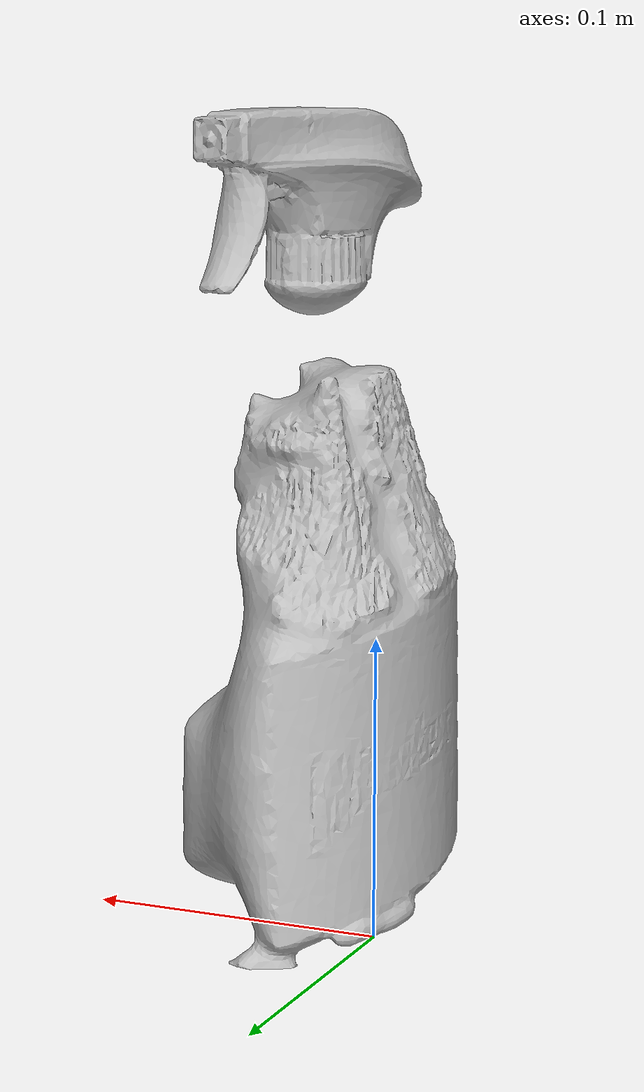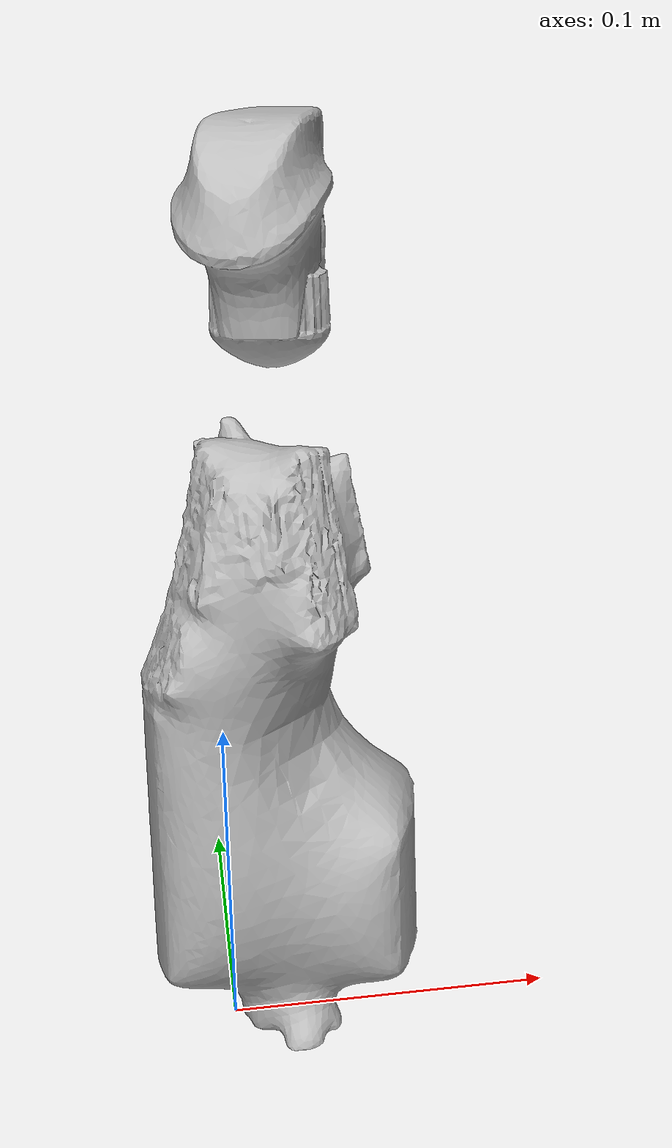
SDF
<?xml version="1.0" ?>
<sdf version="1.8">
  <model name='ycb_022_windex_bottle'>
    <link name='body'>
      <inertial>
        <mass>0.992830523962</mass>
        <pose>0.0139425642907 0.00843004395294 0.102368538691 0 0 0</pose>
        <inertia>
          <ixx>0.00484567157361</ixx>
          <ixy>-4.3069381613e-05</ixy>
          <ixz>1.04159658373e-05</ixz>
          <iyy>0.00472094614207</iyy>
          <iyz>9.97706131917e-05</iyz>
          <izz>0.000710708598682</izz>
        </inertia>
      </inertial>

      <visual name='ycb_022_windex_bottle_visual'>
        <pose>0 0 0 0 0 0</pose>
        <geometry>
          <mesh>
            <uri>model://ycb_022_windex_bottle/meshes/textured.dae</uri>
          </mesh>
        </geometry>
      </visual>

      <collision name='ycb_022_windex_bottle_collision'>
        <pose>0 0 0 0 0 0</pose>
        <geometry>
          <mesh>
            <uri>model://ycb_022_windex_bottle/meshes/nontextured.stl</uri>
          </mesh>
        </geometry>
        <max_contacts>10</max_contacts>
      </collision>
    </link>
  </model>
</sdf>
